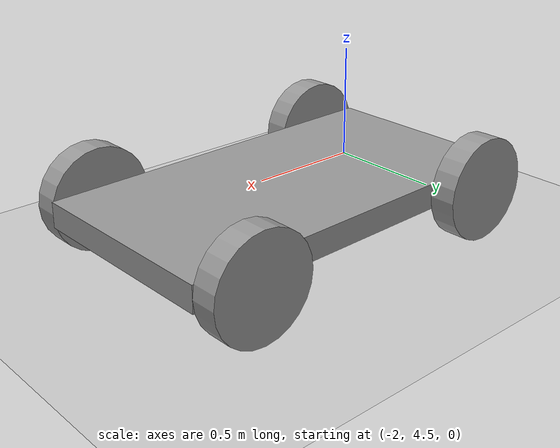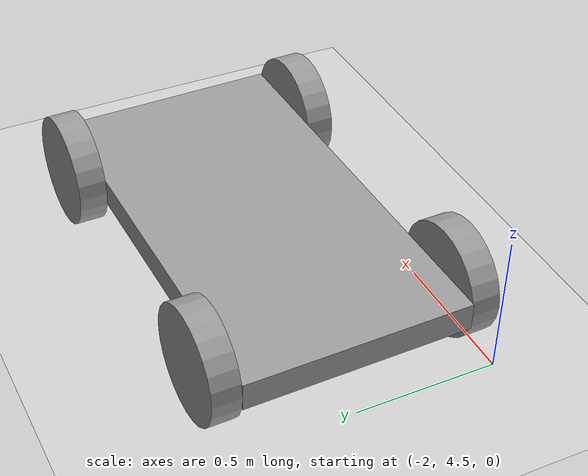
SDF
<sdf version="1.6">
 <world name="default">
  <model name="ground_plane">
   <static>1</static>
   <link name="link">
    <collision name="collision">
     <geometry><plane><normal>0 0 1</normal><size>100 100</size></plane></geometry>
     <surface>
      <contact><collide_bitmask>65535</collide_bitmask></contact>
      <friction><ode><mu>100</mu><mu2>50</mu2></ode></friction>
     </surface>
    </collision>
    <visual name="visual">
     <cast_shadows>0</cast_shadows>
     <geometry><plane><normal>0 0 1</normal><size>100 100</size></plane></geometry>
     <material>
      <script><uri>file://media/materials/scripts/gazebo.material</uri><name>Gazebo/Grey</name></script>
     </material>
    </visual>
   </link>
  </model>
  <model name="4_wheeled_robots">
   <link name="link_5">
    <inertial>
     <mass>1</mass>
     <inertia>
      <ixx>0.166667</ixx>
      <ixy>0</ixy>
      <ixz>0</ixz>
      <iyy>0.166667</iyy>
      <iyz>0</iyz>
      <izz>0.166667</izz>
     </inertia>
    </inertial>
    <pose>-0 0 0.2 0 -0 0</pose>
    <visual name="visual">
     <geometry><box><size>1.5 0.8 0.1</size></box></geometry>
     <material>
      <lighting>1</lighting>
      <script><uri>file://media/materials/scripts/gazebo.material</uri><name>Gazebo/Grey</name></script>
      <shader type="pixel"><normal_map>__default__</normal_map></shader>
      <ambient>0.3 0.3 0.3 1</ambient>
      <diffuse>0.7 0.7 0.7 1</diffuse>
      <specular>0.01 0.01 0.01 1</specular>
      <emissive>0 0 0 1</emissive>
     </material>
    </visual>
    <collision name="collision">
     <geometry><box><size>1.5 0.8 0.1</size></box></geometry>
     <surface>
      <friction>
       <ode><mu>1</mu><mu2>1</mu2><fdir1>0 0 0</fdir1><slip1>0</slip1><slip2>0</slip2></ode>
       <torsional>
        <coefficient>1</coefficient>
        <patch_radius>0</patch_radius>
        <surface_radius>0</surface_radius>
        <use_patch_radius>1</use_patch_radius>
        <ode><slip>0</slip></ode>
       </torsional>
      </friction>
      <bounce><restitution_coefficient>0</restitution_coefficient><threshold>1e+06</threshold></bounce>
      <contact>
       <collide_without_contact>0</collide_without_contact>
       <collide_without_contact_bitmask>1</collide_without_contact_bitmask>
       <collide_bitmask>1</collide_bitmask>
       <ode>
        <soft_cfm>0</soft_cfm>
        <soft_erp>0.2</soft_erp>
        <kp>1e+13</kp>
        <kd>1</kd>
        <max_vel>0.01</max_vel>
        <min_depth>0</min_depth>
       </ode>
       <bullet>
        <split_impulse>1</split_impulse>
        <split_impulse_penetration_threshold>-0.01</split_impulse_penetration_threshold>
        <soft_cfm>0</soft_cfm>
        <soft_erp>0.2</soft_erp>
        <kp>1e+13</kp>
        <kd>1</kd>
       </bullet>
      </contact>
     </surface>
    </collision>
   </link>
   <link name="link_6_clone_0">
    <inertial>
     <mass>1</mass>
     <inertia><ixx>0.145833</ixx><ixy>0</ixy><ixz>0</ixz><iyy>0.145833</iyy><iyz>0</iyz><izz>0.125</izz></inertia>
    </inertial>
    <pose>0.55 0.450019 0.2 1.5707 -0 0</pose>
    <visual name="visual">
     <geometry><cylinder><radius>0.2</radius><length>0.1</length></cylinder></geometry>
     <material>
      <lighting>1</lighting>
      <script><uri>file://media/materials/scripts/gazebo.material</uri><name>Gazebo/Grey</name></script>
      <shader type="pixel"><normal_map>__default__</normal_map></shader>
      <ambient>0.3 0.3 0.3 1</ambient>
      <diffuse>0.7 0.7 0.7 1</diffuse>
      <specular>0.01 0.01 0.01 1</specular>
      <emissive>0 0 0 1</emissive>
     </material>
    </visual>
    <collision name="collision">
     <geometry><cylinder><radius>0.2</radius><length>0.1</length></cylinder></geometry>
     <surface>
      <friction>
       <ode><mu>1</mu><mu2>1</mu2><fdir1>0 0 0</fdir1><slip1>0</slip1><slip2>0</slip2></ode>
       <torsional>
        <coefficient>1</coefficient>
        <patch_radius>0</patch_radius>
        <surface_radius>0</surface_radius>
        <use_patch_radius>1</use_patch_radius>
        <ode><slip>0</slip></ode>
       </torsional>
      </friction>
      <bounce><restitution_coefficient>0</restitution_coefficient><threshold>1e+06</threshold></bounce>
      <contact>
       <collide_without_contact>0</collide_without_contact>
       <collide_without_contact_bitmask>1</collide_without_contact_bitmask>
       <collide_bitmask>1</collide_bitmask>
       <ode>
        <soft_cfm>0</soft_cfm>
        <soft_erp>0.2</soft_erp>
        <kp>1e+13</kp>
        <kd>1</kd>
        <max_vel>0.01</max_vel>
        <min_depth>0</min_depth>
       </ode>
       <bullet>
        <split_impulse>1</split_impulse>
        <split_impulse_penetration_threshold>-0.01</split_impulse_penetration_threshold>
        <soft_cfm>0</soft_cfm>
        <soft_erp>0.2</soft_erp>
        <kp>1e+13</kp>
        <kd>1</kd>
       </bullet>
      </contact>
     </surface>
    </collision>
   </link>
   <link name="link_6_clone_0_clone">
    <inertial>
     <mass>1</mass>
     <inertia><ixx>0.145833</ixx><ixy>0</ixy><ixz>0</ixz><iyy>0.145833</iyy><iyz>0</iyz><izz>0.125</izz></inertia>
    </inertial>
    <pose>0.55 -0.450019 0.2 1.5707 -0 0</pose>
    <visual name="visual">
     <geometry><cylinder><radius>0.2</radius><length>0.1</length></cylinder></geometry>
     <material>
      <lighting>1</lighting>
      <script><uri>file://media/materials/scripts/gazebo.material</uri><name>Gazebo/Grey</name></script>
      <shader type="pixel"><normal_map>__default__</normal_map></shader>
      <ambient>0.3 0.3 0.3 1</ambient>
      <diffuse>0.7 0.7 0.7 1</diffuse>
      <specular>0.01 0.01 0.01 1</specular>
      <emissive>0 0 0 1</emissive>
     </material>
    </visual>
    <collision name="collision">
     <geometry><cylinder><radius>0.2</radius><length>0.1</length></cylinder></geometry>
     <surface>
      <friction>
       <ode><mu>1</mu><mu2>1</mu2><fdir1>0 0 0</fdir1><slip1>0</slip1><slip2>0</slip2></ode>
       <torsional>
        <coefficient>1</coefficient>
        <patch_radius>0</patch_radius>
        <surface_radius>0</surface_radius>
        <use_patch_radius>1</use_patch_radius>
        <ode><slip>0</slip></ode>
       </torsional>
      </friction>
      <bounce><restitution_coefficient>0</restitution_coefficient><threshold>1e+06</threshold></bounce>
      <contact>
       <collide_without_contact>0</collide_without_contact>
       <collide_without_contact_bitmask>1</collide_without_contact_bitmask>
       <collide_bitmask>1</collide_bitmask>
       <ode>
        <soft_cfm>0</soft_cfm>
        <soft_erp>0.2</soft_erp>
        <kp>1e+13</kp>
        <kd>1</kd>
        <max_vel>0.01</max_vel>
        <min_depth>0</min_depth>
       </ode>
       <bullet>
        <split_impulse>1</split_impulse>
        <split_impulse_penetration_threshold>-0.01</split_impulse_penetration_threshold>
        <soft_cfm>0</soft_cfm>
        <soft_erp>0.2</soft_erp>
        <kp>1e+13</kp>
        <kd>1</kd>
       </bullet>
      </contact>
     </surface>
    </collision>
   </link>
   <link name="link_6_clone_0_clone_0">
    <inertial>
     <mass>1</mass>
     <inertia><ixx>0.145833</ixx><ixy>0</ixy><ixz>0</ixz><iyy>0.145833</iyy><iyz>0</iyz><izz>0.125</izz></inertia>
    </inertial>
    <pose>-0.55 -0.450019 0.2 1.5707 -0 0</pose>
    <visual name="visual">
     <geometry><cylinder><radius>0.2</radius><length>0.1</length></cylinder></geometry>
     <material>
      <lighting>1</lighting>
      <script><uri>file://media/materials/scripts/gazebo.material</uri><name>Gazebo/Grey</name></script>
      <shader type="pixel"><normal_map>__default__</normal_map></shader>
      <ambient>0.3 0.3 0.3 1</ambient>
      <diffuse>0.7 0.7 0.7 1</diffuse>
      <specular>0.01 0.01 0.01 1</specular>
      <emissive>0 0 0 1</emissive>
     </material>
    </visual>
    <collision name="collision">
     <geometry><cylinder><radius>0.2</radius><length>0.1</length></cylinder></geometry>
     <surface>
      <friction>
       <ode><mu>1</mu><mu2>1</mu2><fdir1>0 0 0</fdir1><slip1>0</slip1><slip2>0</slip2></ode>
       <torsional>
        <coefficient>1</coefficient>
        <patch_radius>0</patch_radius>
        <surface_radius>0</surface_radius>
        <use_patch_radius>1</use_patch_radius>
        <ode><slip>0</slip></ode>
       </torsional>
      </friction>
      <bounce><restitution_coefficient>0</restitution_coefficient><threshold>1e+06</threshold></bounce>
      <contact>
       <collide_without_contact>0</collide_without_contact>
       <collide_without_contact_bitmask>1</collide_without_contact_bitmask>
       <collide_bitmask>1</collide_bitmask>
       <ode>
        <soft_cfm>0</soft_cfm>
        <soft_erp>0.2</soft_erp>
        <kp>1e+13</kp>
        <kd>1</kd>
        <max_vel>0.01</max_vel>
        <min_depth>0</min_depth>
       </ode>
       <bullet>
        <split_impulse>1</split_impulse>
        <split_impulse_penetration_threshold>-0.01</split_impulse_penetration_threshold>
        <soft_cfm>0</soft_cfm>
        <soft_erp>0.2</soft_erp>
        <kp>1e+13</kp>
        <kd>1</kd>
       </bullet>
      </contact>
     </surface>
    </collision>
   </link>
   <link name="link_6_clone_1">
    <inertial>
     <mass>1</mass>
     <inertia><ixx>0.145833</ixx><ixy>0</ixy><ixz>0</ixz><iyy>0.145833</iyy><iyz>0</iyz><izz>0.125</izz></inertia>
    </inertial>
    <pose>-0.55 0.450019 0.2 1.5707 -0 0</pose>
    <visual name="visual">
     <geometry><cylinder><radius>0.2</radius><length>0.1</length></cylinder></geometry>
     <material>
      <lighting>1</lighting>
      <script><uri>file://media/materials/scripts/gazebo.material</uri><name>Gazebo/Grey</name></script>
      <shader type="pixel"><normal_map>__default__</normal_map></shader>
      <ambient>0.3 0.3 0.3 1</ambient>
      <diffuse>0.7 0.7 0.7 1</diffuse>
      <specular>0.01 0.01 0.01 1</specular>
      <emissive>0 0 0 1</emissive>
     </material>
    </visual>
    <collision name="collision">
     <geometry><cylinder><radius>0.2</radius><length>0.1</length></cylinder></geometry>
     <surface>
      <friction>
       <ode><mu>1</mu><mu2>1</mu2><fdir1>0 0 0</fdir1><slip1>0</slip1><slip2>0</slip2></ode>
       <torsional>
        <coefficient>1</coefficient>
        <patch_radius>0</patch_radius>
        <surface_radius>0</surface_radius>
        <use_patch_radius>1</use_patch_radius>
        <ode><slip>0</slip></ode>
       </torsional>
      </friction>
      <bounce><restitution_coefficient>0</restitution_coefficient><threshold>1e+06</threshold></bounce>
      <contact>
       <collide_without_contact>0</collide_without_contact>
       <collide_without_contact_bitmask>1</collide_without_contact_bitmask>
       <collide_bitmask>1</collide_bitmask>
       <ode>
        <soft_cfm>0</soft_cfm>
        <soft_erp>0.2</soft_erp>
        <kp>1e+13</kp>
        <kd>1</kd>
        <max_vel>0.01</max_vel>
        <min_depth>0</min_depth>
       </ode>
       <bullet>
        <split_impulse>1</split_impulse>
        <split_impulse_penetration_threshold>-0.01</split_impulse_penetration_threshold>
        <soft_cfm>0</soft_cfm>
        <soft_erp>0.2</soft_erp>
        <kp>1e+13</kp>
        <kd>1</kd>
       </bullet>
      </contact>
     </surface>
    </collision>
   </link>
   <joint name="link_5_JOINT_11" type="revolute">
    <parent>link_5</parent>
    <child>link_6_clone_0_clone_0</child>
    <axis>
     <xyz>0 0 1</xyz>
     <use_parent_model_frame>0</use_parent_model_frame>
     <limit>
      <lower>-1.79769e+308</lower>
      <upper>1.79769e+308</upper>
      <effort>-1</effort>
      <velocity>-1</velocity>
     </limit>
     <dynamics>
      <spring_reference>0</spring_reference>
      <spring_stiffness>0</spring_stiffness>
      <damping>0</damping>
     </dynamics>
    </axis>
    <physics>
     <ode><limit><cfm>0</cfm><erp>0.2</erp></limit><suspension><cfm>0</cfm><erp>0.2</erp></suspension></ode>
    </physics>
   </joint>
   <joint name="link_5_JOINT_12" type="revolute">
    <parent>link_5</parent>
    <child>link_6_clone_0_clone</child>
    <axis>
     <xyz>0 0 1</xyz>
     <use_parent_model_frame>0</use_parent_model_frame>
     <limit>
      <lower>-1.79769e+308</lower>
      <upper>1.79769e+308</upper>
      <effort>-1</effort>
      <velocity>-1</velocity>
     </limit>
     <dynamics>
      <spring_reference>0</spring_reference>
      <spring_stiffness>0</spring_stiffness>
      <damping>0</damping>
     </dynamics>
    </axis>
    <physics>
     <ode><limit><cfm>0</cfm><erp>0.2</erp></limit><suspension><cfm>0</cfm><erp>0.2</erp></suspension></ode>
    </physics>
   </joint>
   <joint name="link_5_JOINT_13" type="revolute">
    <parent>link_5</parent>
    <child>link_6_clone_1</child>
    <axis>
     <xyz>0 0 1</xyz>
     <use_parent_model_frame>0</use_parent_model_frame>
     <limit>
      <lower>-1.79769e+308</lower>
      <upper>1.79769e+308</upper>
      <effort>-1</effort>
      <velocity>-1</velocity>
     </limit>
     <dynamics>
      <spring_reference>0</spring_reference>
      <spring_stiffness>0</spring_stiffness>
      <damping>0</damping>
     </dynamics>
    </axis>
    <physics>
     <ode><limit><cfm>0</cfm><erp>0.2</erp></limit><suspension><cfm>0</cfm><erp>0.2</erp></suspension></ode>
    </physics>
   </joint>
   <joint name="link_5_JOINT_14" type="revolute">
    <parent>link_5</parent>
    <child>link_6_clone_0</child>
    <axis>
     <xyz>0 0 1</xyz>
     <use_parent_model_frame>0</use_parent_model_frame>
     <limit>
      <lower>-1.79769e+308</lower>
      <upper>1.79769e+308</upper>
      <effort>-1</effort>
      <velocity>-1</velocity>
     </limit>
     <dynamics>
      <spring_reference>0</spring_reference>
      <spring_stiffness>0</spring_stiffness>
      <damping>0</damping>
     </dynamics>
    </axis>
    <physics>
     <ode><limit><cfm>0</cfm><erp>0.2</erp></limit><suspension><cfm>0</cfm><erp>0.2</erp></suspension></ode>
    </physics>
   </joint>
   <static>0</static>
   <pose>-1.21294 4.98644 2e-06 6e-06 -0 0.018656</pose>
   <plugin name="model_push" filename="libmodel_push.so"/>
  </model>
 </world>
</sdf>
